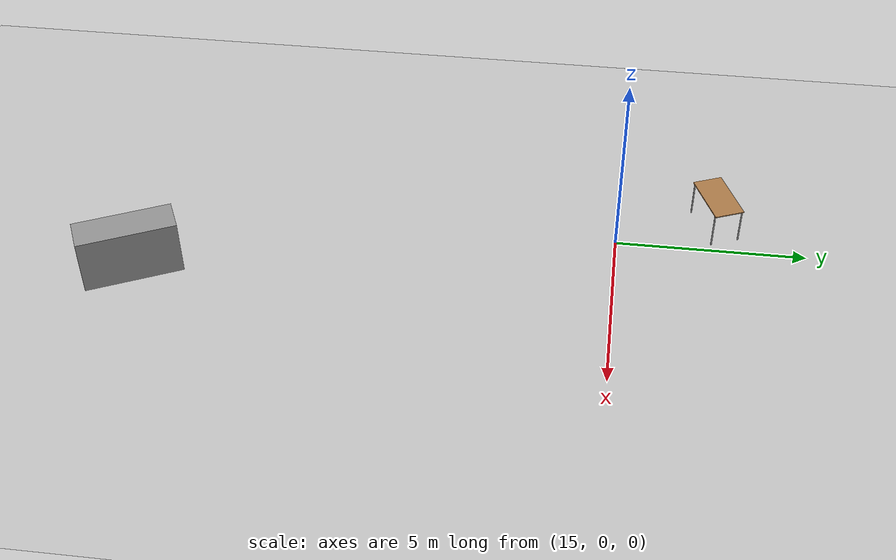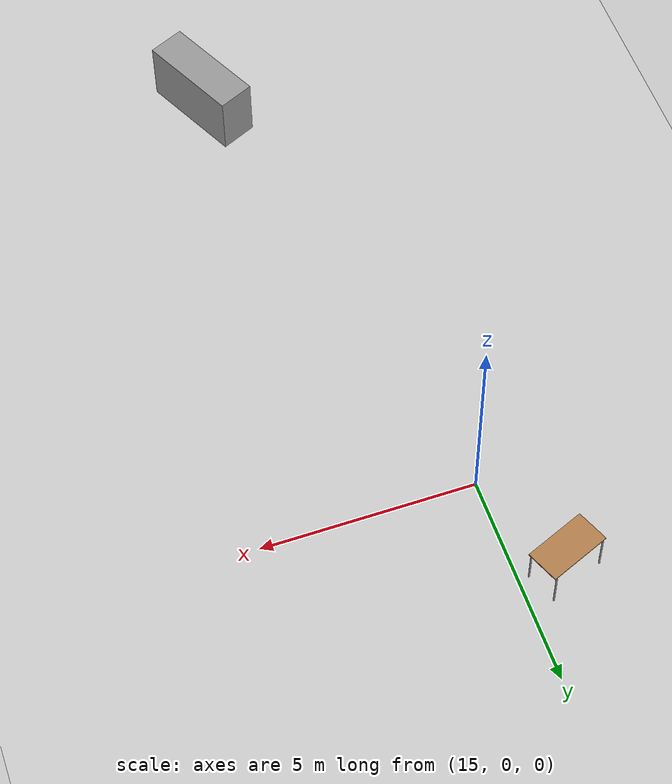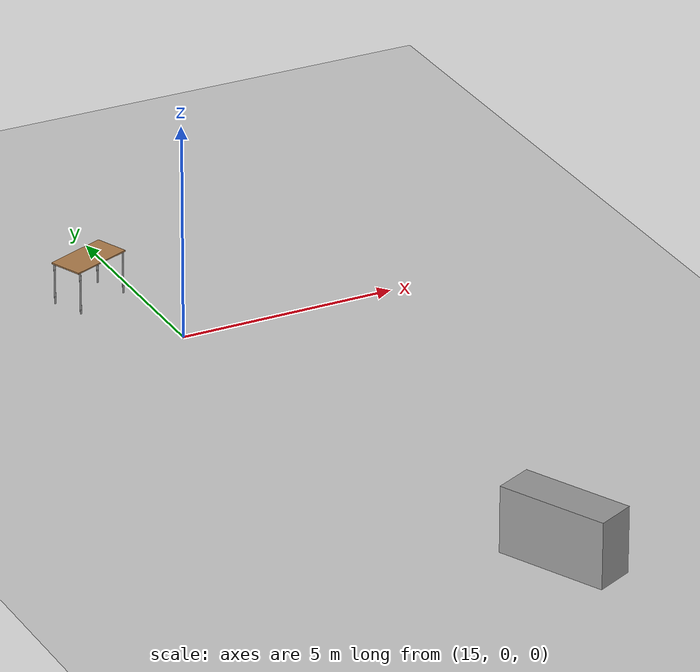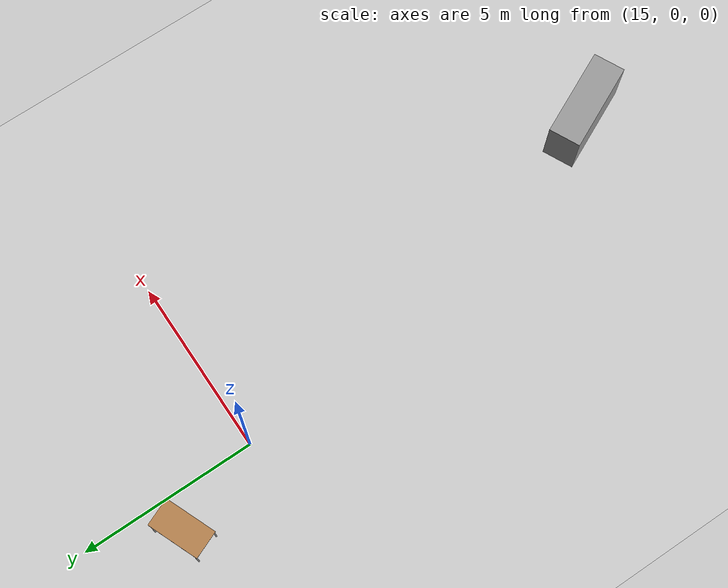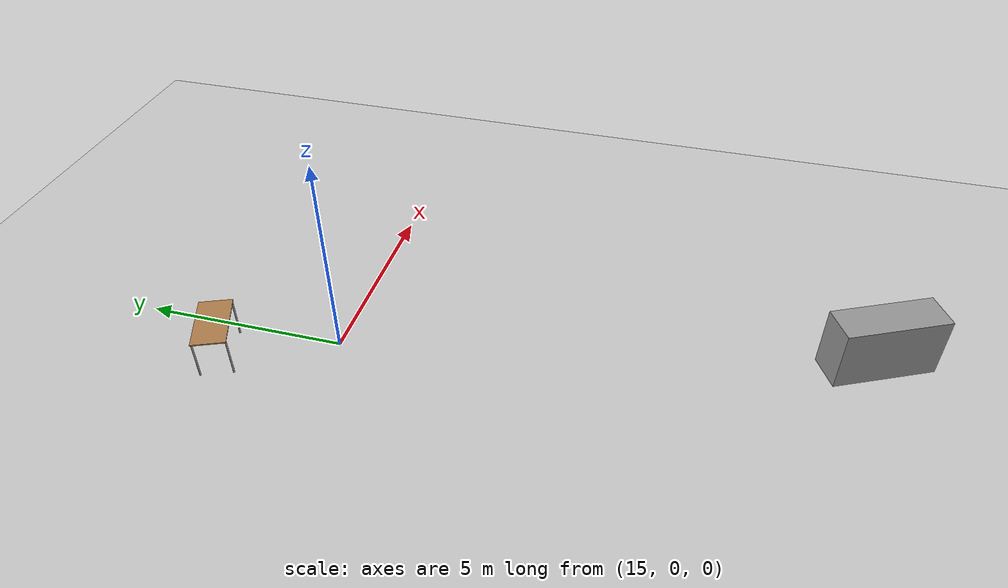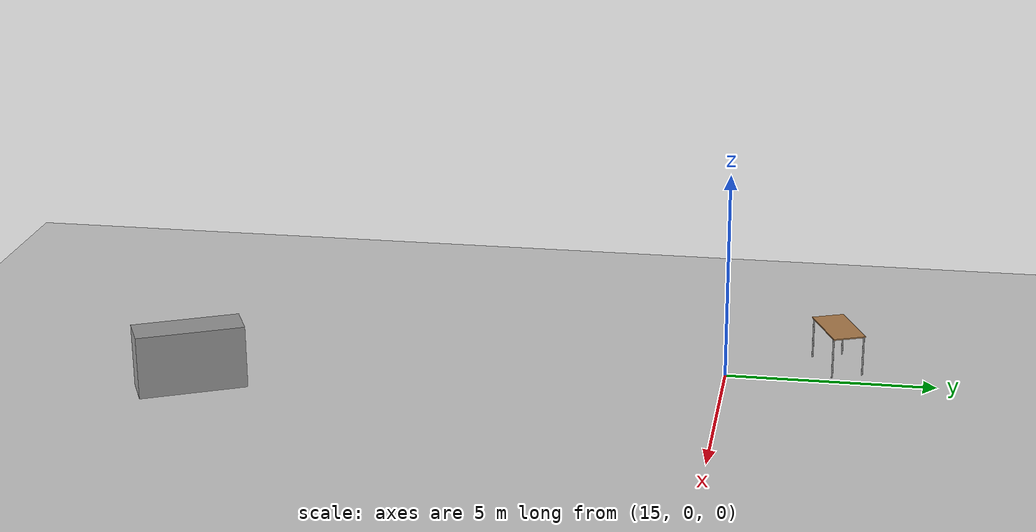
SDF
<sdf version="1.10">
 <world name="maze">
  <model name="ground_plane">
   <static>true</static>
   <link name="link">
    <collision name="collision">
     <geometry><plane><normal>0 0 1</normal><size>100 100</size></plane></geometry>
    </collision>
    <visual name="visual">
     <geometry><plane><normal>0 0 1</normal><size>100 100</size></plane></geometry>
     <material>
      <ambient>0.800000012 0.800000012 0.800000012 1</ambient>
      <diffuse>0.800000012 0.800000012 0.800000012 1</diffuse>
      <specular>0.800000012 0.800000012 0.800000012 1</specular>
     </material>
     <plugin name="__default__" filename="__default__"/>
    </visual>
    <inertial>
     <mass>1</mass>
     <inertia><ixx>1</ixx><ixy>0</ixy><ixz>0</ixz><iyy>1</iyy><iyz>0</iyz><izz>1</izz></inertia>
    </inertial>
   </link>
   <plugin name="__default__" filename="__default__"/>
  </model>
  <model name="table_0_clone_1">
   <static>true</static>
   <link name="link">
    <collision name="surface">
     <pose>0 0 1 0 0 0</pose>
     <geometry><box><size>1.5 0.80000000000000004 0.029999999999999999</size></box></geometry>
     <surface><friction><ode><mu>0.59999999999999998</mu><mu2>0.59999999999999998</mu2></ode></friction></surface>
    </collision>
    <visual name="visual1">
     <pose>0 0 1 0 0 0</pose>
     <geometry><box><size>1.5 0.80000000000000004 0.029999999999999999</size></box></geometry>
     <material>
      <script><uri>file:///usr/share/gz/gz-sim8/media/gazebo.material</uri><name>Gazebo/Wood</name></script>
     </material>
    </visual>
    <collision name="front_left_leg">
     <pose>0.68000000000000005 0.38 0.5 0 0 0</pose>
     <geometry><cylinder><radius>0.02</radius><length>1</length></cylinder></geometry>
    </collision>
    <visual name="front_left_leg">
     <pose>0.68000000000000005 0.38 0.5 0 0 0</pose>
     <geometry><cylinder><radius>0.02</radius><length>1</length></cylinder></geometry>
     <material>
      <script><uri>file:///usr/share/gz/gz-sim8/media/gazebo.material</uri><name>Gazebo/Grey</name></script>
     </material>
    </visual>
    <collision name="front_right_leg">
     <pose>0.68000000000000005 -0.38 0.5 0 0 0</pose>
     <geometry><cylinder><radius>0.02</radius><length>1</length></cylinder></geometry>
    </collision>
    <visual name="front_right_leg">
     <pose>0.68000000000000005 -0.38 0.5 0 0 0</pose>
     <geometry><cylinder><radius>0.02</radius><length>1</length></cylinder></geometry>
     <material>
      <script><uri>file:///usr/share/gz/gz-sim8/media/gazebo.material</uri><name>Gazebo/Grey</name></script>
     </material>
    </visual>
    <collision name="back_right_leg">
     <pose>-0.68000000000000005 -0.38 0.5 0 0 0</pose>
     <geometry><cylinder><radius>0.02</radius><length>1</length></cylinder></geometry>
    </collision>
    <visual name="back_right_leg">
     <pose>-0.68000000000000005 -0.38 0.5 0 0 0</pose>
     <geometry><cylinder><radius>0.02</radius><length>1</length></cylinder></geometry>
     <material>
      <script><uri>file:///usr/share/gz/gz-sim8/media/gazebo.material</uri><name>Gazebo/Grey</name></script>
     </material>
    </visual>
    <collision name="back_left_leg">
     <pose>-0.68000000000000005 0.38 0.5 0 0 0</pose>
     <geometry><cylinder><radius>0.02</radius><length>1</length></cylinder></geometry>
    </collision>
    <visual name="back_left_leg">
     <pose>-0.68000000000000005 0.38 0.5 0 0 0</pose>
     <geometry><cylinder><radius>0.02</radius><length>1</length></cylinder></geometry>
     <material>
      <script><uri>file:///usr/share/gz/gz-sim8/media/gazebo.material</uri><name>Gazebo/Grey</name></script>
     </material>
    </visual>
    <inertial>
     <mass>1</mass>
     <inertia><ixx>1</ixx><ixy>0</ixy><ixz>0</ixz><iyy>1</iyy><iyz>0</iyz><izz>1</izz></inertia>
    </inertial>
   </link>
   <pose>13.972799999999999 2.6148899999999999 0 0 0 0.39148299999999986</pose>
  </model>
  <model name="unit_box_clone_clone_clone_clone_3">
   <link name="link">
    <inertial>
     <mass>4.59091</mass>
     <inertia>
      <ixx>4.0056099999999999</ixx>
      <ixy>0</ixy>
      <ixz>0</ixz>
      <iyy>1.8309800000000001</iyy>
      <iyz>0</iyz>
      <izz>2.7995999999999999</izz>
     </inertia>
    </inertial>
    <visual name="visual">
     <geometry><box><size>0.90377099999999999 2.5497000000000001 1.99227</size></box></geometry>
     <material>
      <script><name>Gazebo/Grey</name><uri>file:///usr/share/gz/gz-sim8/media/gazebo.material</uri></script>
      <shader type="pixel"/>
     </material>
     <cast_shadows>false</cast_shadows>
    </visual>
    <collision name="collision">
     <geometry><box><size>0.90377099999999999 2.5497000000000001 1.99227</size></box></geometry>
     <surface>
      <friction>
       <ode><mu>1</mu><mu2>1</mu2><fdir1>0 0 0</fdir1><slip1>0</slip1><slip2>0</slip2></ode>
       <torsional>
        <coefficient>1</coefficient>
        <patch_radius>0</patch_radius>
        <surface_radius>0</surface_radius>
        <use_patch_radius>true</use_patch_radius>
        <ode><slip>0</slip></ode>
       </torsional>
      </friction>
      <bounce><restitution_coefficient>0</restitution_coefficient><threshold>1000000</threshold></bounce>
      <contact>
       <collide_without_contact>false</collide_without_contact>
       <collide_without_contact_bitmask>1</collide_without_contact_bitmask>
       <collide_bitmask>1</collide_bitmask>
       <ode>
        <soft_cfm>0</soft_cfm>
        <soft_erp>0.20000000000000001</soft_erp>
        <kp>10000000000000</kp>
        <kd>1</kd>
        <max_vel>0.01</max_vel>
        <min_depth>0</min_depth>
       </ode>
       <bullet>
        <split_impulse>true</split_impulse>
        <split_impulse_penetration_threshold>-0.01</split_impulse_penetration_threshold>
        <soft_cfm>0</soft_cfm>
        <soft_erp>0.20000000000000001</soft_erp>
        <kp>10000000000000</kp>
        <kd>1</kd>
       </bullet>
      </contact>
     </surface>
    </collision>
   </link>
   <static>false</static>
   <pose>17.51893424987793 -12.437290191650392 0.50210797786712635 -1.7183299730372459e-18 -1.22765996633624e-17 -2.6962799919139395</pose>
  </model>
 </world>
</sdf>
